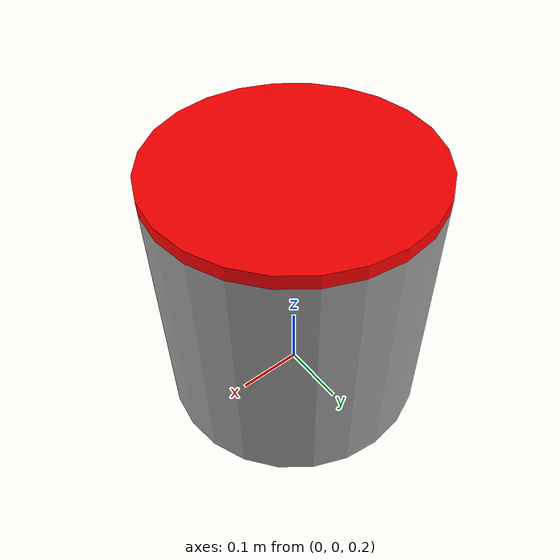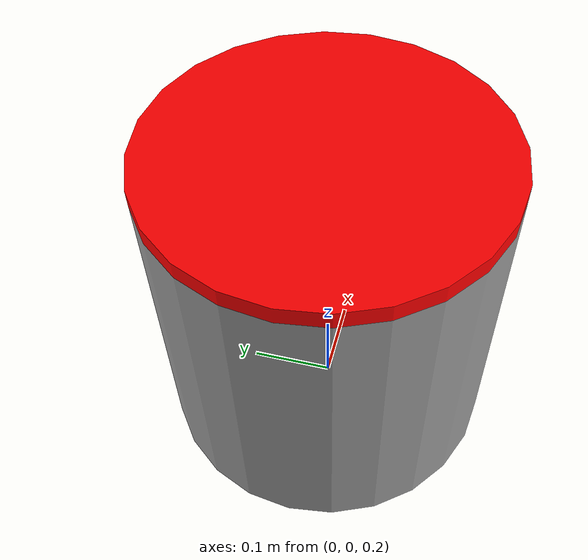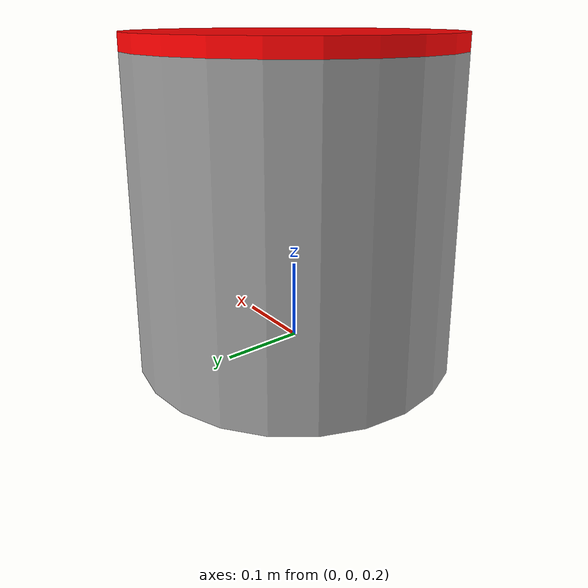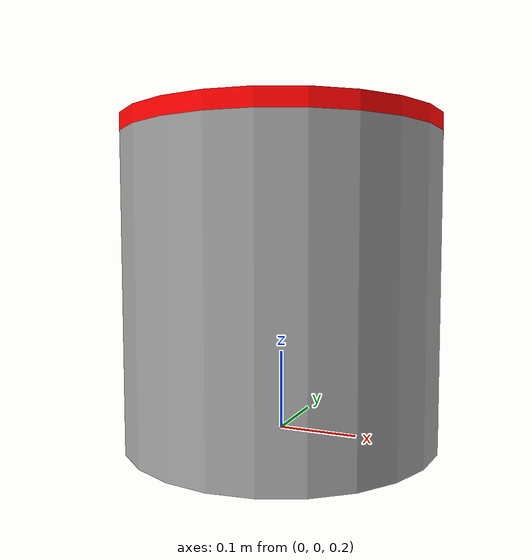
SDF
<?xml version='1.0'?>
<sdf version='1.5'>
  <model name="mix_cylinder">
    <pose>0 0 0.19 0 0 0</pose>
    <link name="link_00">
      <pose>0.0 0 0.19 0 0 0</pose>
      <self_collide>0</self_collide>
      <kinematic>0</kinematic>
      <gravity>0</gravity>
      <visual name='visual_00'>
        <geometry>
          <cylinder>
            <radius>0.2</radius>
            <length>0.38</length>
          </cylinder>
        </geometry>
        <material>
          <script>
            <name>Gazebo/Grey</name>
            <uri>file://media/materials/scripts/gazebo.material</uri>
          </script>
          <ambient>0.3 0.3 0.3 1</ambient>
          <diffuse>0.7 0.7 0.7 1</diffuse>
          <specular>0.01 0.01 0.01 1</specular>
          <emissive>0 0 0 1</emissive>
          <shader type='vertex'>
            <normal_map>__default__</normal_map>
          </shader>
        </material>
        <pose frame=''>0 0 0 0 -0 0</pose>
        <cast_shadows>1</cast_shadows>
        <transparency>0</transparency>
      </visual>
    </link>

    <link name="link_01">
      <pose>0.0 0 0.39 0 0 0</pose>
      <gravity>0</gravity>
      <visual name='visual_01'>
        <geometry>
          <cylinder>
            <radius>0.2</radius>
            <length>0.02</length>
          </cylinder>
        </geometry>
        <material>
          <script>
            <name>Gazebo/Grey</name>
            <uri>file://media/materials/scripts/gazebo.material</uri>
          </script>
          <ambient>1 0 0 1</ambient>
          <diffuse>1 0 0 1</diffuse>
          <specular>0.01 0 0 1</specular>
          <emissive>0 0 0 1</emissive>
          <shader type='vertex'>
            <normal_map>__default__</normal_map>
          </shader>
        </material>
        <pose frame=''>0 0 0 0 -0 0</pose>
        <cast_shadows>1</cast_shadows>
        <transparency>0</transparency>
      </visual>
    </link>
    <plugin name="model_push" filename="libgazebo_moving_bucket.so">
        <robotNamespace>/</robotNamespace>
    </plugin>
  </model>
</sdf>
